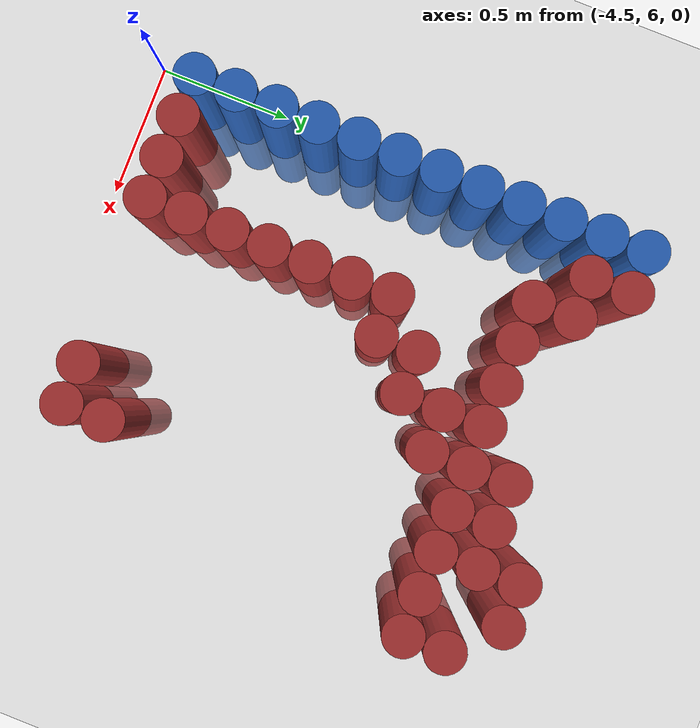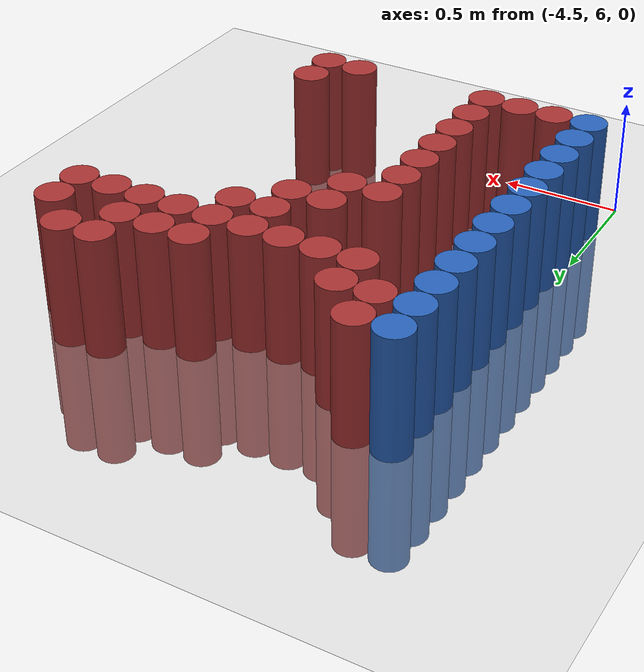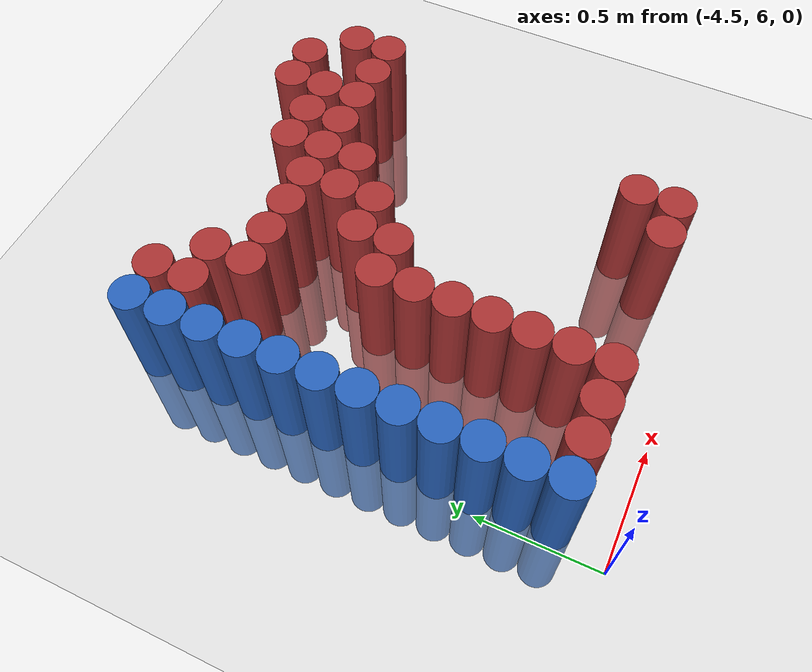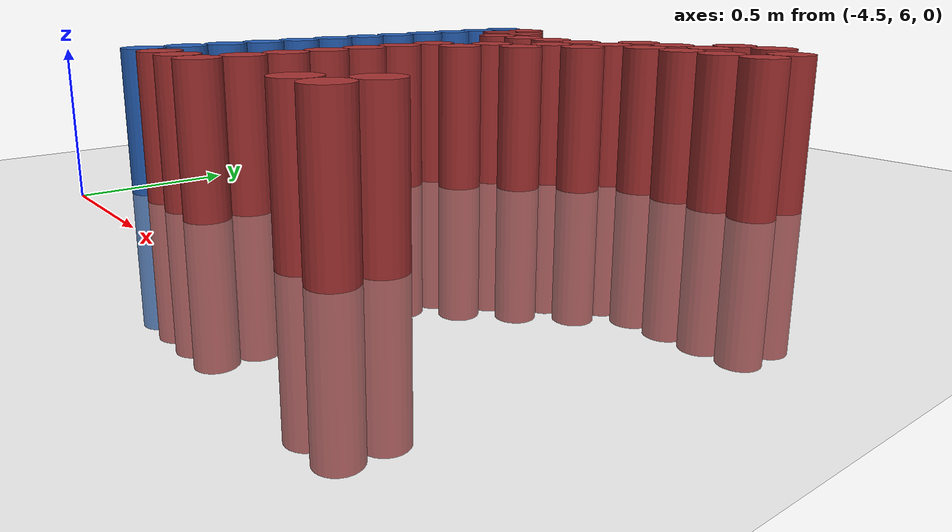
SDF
<sdf version="1.6">
 <world name="default">
  <model name="ground_plane">
   <static>1</static>
   <link name="link">
    <collision name="collision">
     <geometry><plane><normal>0 0 1</normal><size>100 100</size></plane></geometry>
     <surface><friction><ode><mu>100</mu><mu2>50</mu2></ode></friction></surface>
    </collision>
    <visual name="visual">
     <cast_shadows>0</cast_shadows>
     <geometry><plane><normal>0 0 1</normal><size>100 100</size></plane></geometry>
     <material>
      <script><uri>file://media/materials/scripts/gazebo.material</uri><name>Gazebo/Grey</name></script>
     </material>
    </visual>
   </link>
  </model>
  <model name="unit_cylinder_103">
   <static>1</static>
   <pose>-4.425000 6.225000 0.000000 0.000000 0.000000 0.000000</pose>
   <link name="link">
    <inertial>
     <mass>1</mass>
     <inertia><ixx>0.145833</ixx><ixy>0</ixy><ixz>0</ixz><iyy>0.145833</iyy><iyz>0</iyz><izz>0.125</izz></inertia>
    </inertial>
    <collision name="collision">
     <geometry><cylinder><radius>0.075000</radius><length>1</length></cylinder></geometry>
    </collision>
    <visual name="visual">
     <geometry><cylinder><radius>0.075000</radius><length>1</length></cylinder></geometry>
     <material>
      <ambient>0.152000 0.379000 0.720000 1</ambient>
      <diffuse>0.152000 0.379000 0.720000 1</diffuse>
     </material>
     <material>
      <script><name>Gazebo/Grey</name><uri>file://media/materials/scripts/gazebo.material</uri></script>
     </material>
    </visual>
   </link>
  </model>
  <model name="unit_cylinder_104">
   <static>1</static>
   <pose>-4.425000 6.375000 0.000000 0.000000 0.000000 0.000000</pose>
   <link name="link">
    <inertial>
     <mass>1</mass>
     <inertia><ixx>0.145833</ixx><ixy>0</ixy><ixz>0</ixz><iyy>0.145833</iyy><iyz>0</iyz><izz>0.125</izz></inertia>
    </inertial>
    <collision name="collision">
     <geometry><cylinder><radius>0.075000</radius><length>1</length></cylinder></geometry>
    </collision>
    <visual name="visual">
     <geometry><cylinder><radius>0.075000</radius><length>1</length></cylinder></geometry>
     <material>
      <ambient>0.152000 0.379000 0.720000 1</ambient>
      <diffuse>0.152000 0.379000 0.720000 1</diffuse>
     </material>
     <material>
      <script><name>Gazebo/Grey</name><uri>file://media/materials/scripts/gazebo.material</uri></script>
     </material>
    </visual>
   </link>
  </model>
  <model name="unit_cylinder_105">
   <static>1</static>
   <pose>-4.425000 6.525000 0.000000 0.000000 0.000000 0.000000</pose>
   <link name="link">
    <inertial>
     <mass>1</mass>
     <inertia><ixx>0.145833</ixx><ixy>0</ixy><ixz>0</ixz><iyy>0.145833</iyy><iyz>0</iyz><izz>0.125</izz></inertia>
    </inertial>
    <collision name="collision">
     <geometry><cylinder><radius>0.075000</radius><length>1</length></cylinder></geometry>
    </collision>
    <visual name="visual">
     <geometry><cylinder><radius>0.075000</radius><length>1</length></cylinder></geometry>
     <material>
      <ambient>0.152000 0.379000 0.720000 1</ambient>
      <diffuse>0.152000 0.379000 0.720000 1</diffuse>
     </material>
     <material>
      <script><name>Gazebo/Grey</name><uri>file://media/materials/scripts/gazebo.material</uri></script>
     </material>
    </visual>
   </link>
  </model>
  <model name="unit_cylinder_106">
   <static>1</static>
   <pose>-4.425000 6.675000 0.000000 0.000000 0.000000 0.000000</pose>
   <link name="link">
    <inertial>
     <mass>1</mass>
     <inertia><ixx>0.145833</ixx><ixy>0</ixy><ixz>0</ixz><iyy>0.145833</iyy><iyz>0</iyz><izz>0.125</izz></inertia>
    </inertial>
    <collision name="collision">
     <geometry><cylinder><radius>0.075000</radius><length>1</length></cylinder></geometry>
    </collision>
    <visual name="visual">
     <geometry><cylinder><radius>0.075000</radius><length>1</length></cylinder></geometry>
     <material>
      <ambient>0.152000 0.379000 0.720000 1</ambient>
      <diffuse>0.152000 0.379000 0.720000 1</diffuse>
     </material>
     <material>
      <script><name>Gazebo/Grey</name><uri>file://media/materials/scripts/gazebo.material</uri></script>
     </material>
    </visual>
   </link>
  </model>
  <model name="unit_cylinder_107">
   <static>1</static>
   <pose>-4.425000 6.825000 0.000000 0.000000 0.000000 0.000000</pose>
   <link name="link">
    <inertial>
     <mass>1</mass>
     <inertia><ixx>0.145833</ixx><ixy>0</ixy><ixz>0</ixz><iyy>0.145833</iyy><iyz>0</iyz><izz>0.125</izz></inertia>
    </inertial>
    <collision name="collision">
     <geometry><cylinder><radius>0.075000</radius><length>1</length></cylinder></geometry>
    </collision>
    <visual name="visual">
     <geometry><cylinder><radius>0.075000</radius><length>1</length></cylinder></geometry>
     <material>
      <ambient>0.152000 0.379000 0.720000 1</ambient>
      <diffuse>0.152000 0.379000 0.720000 1</diffuse>
     </material>
     <material>
      <script><name>Gazebo/Grey</name><uri>file://media/materials/scripts/gazebo.material</uri></script>
     </material>
    </visual>
   </link>
  </model>
  <model name="unit_cylinder_108">
   <static>1</static>
   <pose>-4.425000 6.975000 0.000000 0.000000 0.000000 0.000000</pose>
   <link name="link">
    <inertial>
     <mass>1</mass>
     <inertia><ixx>0.145833</ixx><ixy>0</ixy><ixz>0</ixz><iyy>0.145833</iyy><iyz>0</iyz><izz>0.125</izz></inertia>
    </inertial>
    <collision name="collision">
     <geometry><cylinder><radius>0.075000</radius><length>1</length></cylinder></geometry>
    </collision>
    <visual name="visual">
     <geometry><cylinder><radius>0.075000</radius><length>1</length></cylinder></geometry>
     <material>
      <ambient>0.152000 0.379000 0.720000 1</ambient>
      <diffuse>0.152000 0.379000 0.720000 1</diffuse>
     </material>
     <material>
      <script><name>Gazebo/Grey</name><uri>file://media/materials/scripts/gazebo.material</uri></script>
     </material>
    </visual>
   </link>
  </model>
  <model name="unit_cylinder_109">
   <static>1</static>
   <pose>-4.425000 7.125000 0.000000 0.000000 0.000000 0.000000</pose>
   <link name="link">
    <inertial>
     <mass>1</mass>
     <inertia><ixx>0.145833</ixx><ixy>0</ixy><ixz>0</ixz><iyy>0.145833</iyy><iyz>0</iyz><izz>0.125</izz></inertia>
    </inertial>
    <collision name="collision">
     <geometry><cylinder><radius>0.075000</radius><length>1</length></cylinder></geometry>
    </collision>
    <visual name="visual">
     <geometry><cylinder><radius>0.075000</radius><length>1</length></cylinder></geometry>
     <material>
      <ambient>0.152000 0.379000 0.720000 1</ambient>
      <diffuse>0.152000 0.379000 0.720000 1</diffuse>
     </material>
     <material>
      <script><name>Gazebo/Grey</name><uri>file://media/materials/scripts/gazebo.material</uri></script>
     </material>
    </visual>
   </link>
  </model>
  <model name="unit_cylinder_110">
   <static>1</static>
   <pose>-4.425000 7.275000 0.000000 0.000000 0.000000 0.000000</pose>
   <link name="link">
    <inertial>
     <mass>1</mass>
     <inertia><ixx>0.145833</ixx><ixy>0</ixy><ixz>0</ixz><iyy>0.145833</iyy><iyz>0</iyz><izz>0.125</izz></inertia>
    </inertial>
    <collision name="collision">
     <geometry><cylinder><radius>0.075000</radius><length>1</length></cylinder></geometry>
    </collision>
    <visual name="visual">
     <geometry><cylinder><radius>0.075000</radius><length>1</length></cylinder></geometry>
     <material>
      <ambient>0.152000 0.379000 0.720000 1</ambient>
      <diffuse>0.152000 0.379000 0.720000 1</diffuse>
     </material>
     <material>
      <script><name>Gazebo/Grey</name><uri>file://media/materials/scripts/gazebo.material</uri></script>
     </material>
    </visual>
   </link>
  </model>
  <model name="unit_cylinder_111">
   <static>1</static>
   <pose>-4.425000 7.425000 0.000000 0.000000 0.000000 0.000000</pose>
   <link name="link">
    <inertial>
     <mass>1</mass>
     <inertia><ixx>0.145833</ixx><ixy>0</ixy><ixz>0</ixz><iyy>0.145833</iyy><iyz>0</iyz><izz>0.125</izz></inertia>
    </inertial>
    <collision name="collision">
     <geometry><cylinder><radius>0.075000</radius><length>1</length></cylinder></geometry>
    </collision>
    <visual name="visual">
     <geometry><cylinder><radius>0.075000</radius><length>1</length></cylinder></geometry>
     <material>
      <ambient>0.152000 0.379000 0.720000 1</ambient>
      <diffuse>0.152000 0.379000 0.720000 1</diffuse>
     </material>
     <material>
      <script><name>Gazebo/Grey</name><uri>file://media/materials/scripts/gazebo.material</uri></script>
     </material>
    </visual>
   </link>
  </model>
  <model name="unit_cylinder_112">
   <static>1</static>
   <pose>-4.425000 7.575000 0.000000 0.000000 0.000000 0.000000</pose>
   <link name="link">
    <inertial>
     <mass>1</mass>
     <inertia><ixx>0.145833</ixx><ixy>0</ixy><ixz>0</ixz><iyy>0.145833</iyy><iyz>0</iyz><izz>0.125</izz></inertia>
    </inertial>
    <collision name="collision">
     <geometry><cylinder><radius>0.075000</radius><length>1</length></cylinder></geometry>
    </collision>
    <visual name="visual">
     <geometry><cylinder><radius>0.075000</radius><length>1</length></cylinder></geometry>
     <material>
      <ambient>0.152000 0.379000 0.720000 1</ambient>
      <diffuse>0.152000 0.379000 0.720000 1</diffuse>
     </material>
     <material>
      <script><name>Gazebo/Grey</name><uri>file://media/materials/scripts/gazebo.material</uri></script>
     </material>
    </visual>
   </link>
  </model>
  <model name="unit_cylinder_113">
   <static>1</static>
   <pose>-4.425000 7.725000 0.000000 0.000000 0.000000 0.000000</pose>
   <link name="link">
    <inertial>
     <mass>1</mass>
     <inertia><ixx>0.145833</ixx><ixy>0</ixy><ixz>0</ixz><iyy>0.145833</iyy><iyz>0</iyz><izz>0.125</izz></inertia>
    </inertial>
    <collision name="collision">
     <geometry><cylinder><radius>0.075000</radius><length>1</length></cylinder></geometry>
    </collision>
    <visual name="visual">
     <geometry><cylinder><radius>0.075000</radius><length>1</length></cylinder></geometry>
     <material>
      <ambient>0.152000 0.379000 0.720000 1</ambient>
      <diffuse>0.152000 0.379000 0.720000 1</diffuse>
     </material>
     <material>
      <script><name>Gazebo/Grey</name><uri>file://media/materials/scripts/gazebo.material</uri></script>
     </material>
    </visual>
   </link>
  </model>
  <model name="unit_cylinder_114">
   <static>1</static>
   <pose>-4.425000 7.875000 0.000000 0.000000 0.000000 0.000000</pose>
   <link name="link">
    <inertial>
     <mass>1</mass>
     <inertia><ixx>0.145833</ixx><ixy>0</ixy><ixz>0</ixz><iyy>0.145833</iyy><iyz>0</iyz><izz>0.125</izz></inertia>
    </inertial>
    <collision name="collision">
     <geometry><cylinder><radius>0.075000</radius><length>1</length></cylinder></geometry>
    </collision>
    <visual name="visual">
     <geometry><cylinder><radius>0.075000</radius><length>1</length></cylinder></geometry>
     <material>
      <ambient>0.152000 0.379000 0.720000 1</ambient>
      <diffuse>0.152000 0.379000 0.720000 1</diffuse>
     </material>
     <material>
      <script><name>Gazebo/Grey</name><uri>file://media/materials/scripts/gazebo.material</uri></script>
     </material>
    </visual>
   </link>
  </model>
  <model name="unit_cylinder_132">
   <static>1</static>
   <pose>-4.275000 6.225000 0.000000 0.000000 0.000000 0.000000</pose>
   <link name="link">
    <inertial>
     <mass>1</mass>
     <inertia><ixx>0.145833</ixx><ixy>0</ixy><ixz>0</ixz><iyy>0.145833</iyy><iyz>0</iyz><izz>0.125</izz></inertia>
    </inertial>
    <collision name="collision">
     <geometry><cylinder><radius>0.075000</radius><length>1</length></cylinder></geometry>
    </collision>
    <visual name="visual">
     <geometry><cylinder><radius>0.075000</radius><length>1</length></cylinder></geometry>
     <material>
      <ambient>0.648000 0.192000 0.192000 1</ambient>
      <diffuse>0.648000 0.192000 0.192000 1</diffuse>
     </material>
     <material>
      <script><name>Gazebo/Grey</name><uri>file://media/materials/scripts/gazebo.material</uri></script>
     </material>
    </visual>
   </link>
  </model>
  <model name="unit_cylinder_133">
   <static>1</static>
   <pose>-4.275000 7.725000 0.000000 0.000000 0.000000 0.000000</pose>
   <link name="link">
    <inertial>
     <mass>1</mass>
     <inertia><ixx>0.145833</ixx><ixy>0</ixy><ixz>0</ixz><iyy>0.145833</iyy><iyz>0</iyz><izz>0.125</izz></inertia>
    </inertial>
    <collision name="collision">
     <geometry><cylinder><radius>0.075000</radius><length>1</length></cylinder></geometry>
    </collision>
    <visual name="visual">
     <geometry><cylinder><radius>0.075000</radius><length>1</length></cylinder></geometry>
     <material>
      <ambient>0.648000 0.192000 0.192000 1</ambient>
      <diffuse>0.648000 0.192000 0.192000 1</diffuse>
     </material>
     <material>
      <script><name>Gazebo/Grey</name><uri>file://media/materials/scripts/gazebo.material</uri></script>
     </material>
    </visual>
   </link>
  </model>
  <model name="unit_cylinder_134">
   <static>1</static>
   <pose>-4.275000 7.875000 0.000000 0.000000 0.000000 0.000000</pose>
   <link name="link">
    <inertial>
     <mass>1</mass>
     <inertia><ixx>0.145833</ixx><ixy>0</ixy><ixz>0</ixz><iyy>0.145833</iyy><iyz>0</iyz><izz>0.125</izz></inertia>
    </inertial>
    <collision name="collision">
     <geometry><cylinder><radius>0.075000</radius><length>1</length></cylinder></geometry>
    </collision>
    <visual name="visual">
     <geometry><cylinder><radius>0.075000</radius><length>1</length></cylinder></geometry>
     <material>
      <ambient>0.648000 0.192000 0.192000 1</ambient>
      <diffuse>0.648000 0.192000 0.192000 1</diffuse>
     </material>
     <material>
      <script><name>Gazebo/Grey</name><uri>file://media/materials/scripts/gazebo.material</uri></script>
     </material>
    </visual>
   </link>
  </model>
  <model name="unit_cylinder_143">
   <static>1</static>
   <pose>-4.125000 6.225000 0.000000 0.000000 0.000000 0.000000</pose>
   <link name="link">
    <inertial>
     <mass>1</mass>
     <inertia><ixx>0.145833</ixx><ixy>0</ixy><ixz>0</ixz><iyy>0.145833</iyy><iyz>0</iyz><izz>0.125</izz></inertia>
    </inertial>
    <collision name="collision">
     <geometry><cylinder><radius>0.075000</radius><length>1</length></cylinder></geometry>
    </collision>
    <visual name="visual">
     <geometry><cylinder><radius>0.075000</radius><length>1</length></cylinder></geometry>
     <material>
      <ambient>0.648000 0.192000 0.192000 1</ambient>
      <diffuse>0.648000 0.192000 0.192000 1</diffuse>
     </material>
     <material>
      <script><name>Gazebo/Grey</name><uri>file://media/materials/scripts/gazebo.material</uri></script>
     </material>
    </visual>
   </link>
  </model>
  <model name="unit_cylinder_144">
   <static>1</static>
   <pose>-4.125000 7.575000 0.000000 0.000000 0.000000 0.000000</pose>
   <link name="link">
    <inertial>
     <mass>1</mass>
     <inertia><ixx>0.145833</ixx><ixy>0</ixy><ixz>0</ixz><iyy>0.145833</iyy><iyz>0</iyz><izz>0.125</izz></inertia>
    </inertial>
    <collision name="collision">
     <geometry><cylinder><radius>0.075000</radius><length>1</length></cylinder></geometry>
    </collision>
    <visual name="visual">
     <geometry><cylinder><radius>0.075000</radius><length>1</length></cylinder></geometry>
     <material>
      <ambient>0.648000 0.192000 0.192000 1</ambient>
      <diffuse>0.648000 0.192000 0.192000 1</diffuse>
     </material>
     <material>
      <script><name>Gazebo/Grey</name><uri>file://media/materials/scripts/gazebo.material</uri></script>
     </material>
    </visual>
   </link>
  </model>
  <model name="unit_cylinder_145">
   <static>1</static>
   <pose>-4.125000 7.725000 0.000000 0.000000 0.000000 0.000000</pose>
   <link name="link">
    <inertial>
     <mass>1</mass>
     <inertia><ixx>0.145833</ixx><ixy>0</ixy><ixz>0</ixz><iyy>0.145833</iyy><iyz>0</iyz><izz>0.125</izz></inertia>
    </inertial>
    <collision name="collision">
     <geometry><cylinder><radius>0.075000</radius><length>1</length></cylinder></geometry>
    </collision>
    <visual name="visual">
     <geometry><cylinder><radius>0.075000</radius><length>1</length></cylinder></geometry>
     <material>
      <ambient>0.648000 0.192000 0.192000 1</ambient>
      <diffuse>0.648000 0.192000 0.192000 1</diffuse>
     </material>
     <material>
      <script><name>Gazebo/Grey</name><uri>file://media/materials/scripts/gazebo.material</uri></script>
     </material>
    </visual>
   </link>
  </model>
  <model name="unit_cylinder_149">
   <static>1</static>
   <pose>-3.975000 6.225000 0.000000 0.000000 0.000000 0.000000</pose>
   <link name="link">
    <inertial>
     <mass>1</mass>
     <inertia><ixx>0.145833</ixx><ixy>0</ixy><ixz>0</ixz><iyy>0.145833</iyy><iyz>0</iyz><izz>0.125</izz></inertia>
    </inertial>
    <collision name="collision">
     <geometry><cylinder><radius>0.075000</radius><length>1</length></cylinder></geometry>
    </collision>
    <visual name="visual">
     <geometry><cylinder><radius>0.075000</radius><length>1</length></cylinder></geometry>
     <material>
      <ambient>0.648000 0.192000 0.192000 1</ambient>
      <diffuse>0.648000 0.192000 0.192000 1</diffuse>
     </material>
     <material>
      <script><name>Gazebo/Grey</name><uri>file://media/materials/scripts/gazebo.material</uri></script>
     </material>
    </visual>
   </link>
  </model>
  <model name="unit_cylinder_150">
   <static>1</static>
   <pose>-3.975000 6.375000 0.000000 0.000000 0.000000 0.000000</pose>
   <link name="link">
    <inertial>
     <mass>1</mass>
     <inertia><ixx>0.145833</ixx><ixy>0</ixy><ixz>0</ixz><iyy>0.145833</iyy><iyz>0</iyz><izz>0.125</izz></inertia>
    </inertial>
    <collision name="collision">
     <geometry><cylinder><radius>0.075000</radius><length>1</length></cylinder></geometry>
    </collision>
    <visual name="visual">
     <geometry><cylinder><radius>0.075000</radius><length>1</length></cylinder></geometry>
     <material>
      <ambient>0.648000 0.192000 0.192000 1</ambient>
      <diffuse>0.648000 0.192000 0.192000 1</diffuse>
     </material>
     <material>
      <script><name>Gazebo/Grey</name><uri>file://media/materials/scripts/gazebo.material</uri></script>
     </material>
    </visual>
   </link>
  </model>
  <model name="unit_cylinder_151">
   <static>1</static>
   <pose>-3.975000 6.525000 0.000000 0.000000 0.000000 0.000000</pose>
   <link name="link">
    <inertial>
     <mass>1</mass>
     <inertia><ixx>0.145833</ixx><ixy>0</ixy><ixz>0</ixz><iyy>0.145833</iyy><iyz>0</iyz><izz>0.125</izz></inertia>
    </inertial>
    <collision name="collision">
     <geometry><cylinder><radius>0.075000</radius><length>1</length></cylinder></geometry>
    </collision>
    <visual name="visual">
     <geometry><cylinder><radius>0.075000</radius><length>1</length></cylinder></geometry>
     <material>
      <ambient>0.648000 0.192000 0.192000 1</ambient>
      <diffuse>0.648000 0.192000 0.192000 1</diffuse>
     </material>
     <material>
      <script><name>Gazebo/Grey</name><uri>file://media/materials/scripts/gazebo.material</uri></script>
     </material>
    </visual>
   </link>
  </model>
  <model name="unit_cylinder_152">
   <static>1</static>
   <pose>-3.975000 6.675000 0.000000 0.000000 0.000000 0.000000</pose>
   <link name="link">
    <inertial>
     <mass>1</mass>
     <inertia><ixx>0.145833</ixx><ixy>0</ixy><ixz>0</ixz><iyy>0.145833</iyy><iyz>0</iyz><izz>0.125</izz></inertia>
    </inertial>
    <collision name="collision">
     <geometry><cylinder><radius>0.075000</radius><length>1</length></cylinder></geometry>
    </collision>
    <visual name="visual">
     <geometry><cylinder><radius>0.075000</radius><length>1</length></cylinder></geometry>
     <material>
      <ambient>0.648000 0.192000 0.192000 1</ambient>
      <diffuse>0.648000 0.192000 0.192000 1</diffuse>
     </material>
     <material>
      <script><name>Gazebo/Grey</name><uri>file://media/materials/scripts/gazebo.material</uri></script>
     </material>
    </visual>
   </link>
  </model>
  <model name="unit_cylinder_153">
   <static>1</static>
   <pose>-3.975000 6.825000 0.000000 0.000000 0.000000 0.000000</pose>
   <link name="link">
    <inertial>
     <mass>1</mass>
     <inertia><ixx>0.145833</ixx><ixy>0</ixy><ixz>0</ixz><iyy>0.145833</iyy><iyz>0</iyz><izz>0.125</izz></inertia>
    </inertial>
    <collision name="collision">
     <geometry><cylinder><radius>0.075000</radius><length>1</length></cylinder></geometry>
    </collision>
    <visual name="visual">
     <geometry><cylinder><radius>0.075000</radius><length>1</length></cylinder></geometry>
     <material>
      <ambient>0.648000 0.192000 0.192000 1</ambient>
      <diffuse>0.648000 0.192000 0.192000 1</diffuse>
     </material>
     <material>
      <script><name>Gazebo/Grey</name><uri>file://media/materials/scripts/gazebo.material</uri></script>
     </material>
    </visual>
   </link>
  </model>
  <model name="unit_cylinder_154">
   <static>1</static>
   <pose>-3.975000 6.975000 0.000000 0.000000 0.000000 0.000000</pose>
   <link name="link">
    <inertial>
     <mass>1</mass>
     <inertia><ixx>0.145833</ixx><ixy>0</ixy><ixz>0</ixz><iyy>0.145833</iyy><iyz>0</iyz><izz>0.125</izz></inertia>
    </inertial>
    <collision name="collision">
     <geometry><cylinder><radius>0.075000</radius><length>1</length></cylinder></geometry>
    </collision>
    <visual name="visual">
     <geometry><cylinder><radius>0.075000</radius><length>1</length></cylinder></geometry>
     <material>
      <ambient>0.648000 0.192000 0.192000 1</ambient>
      <diffuse>0.648000 0.192000 0.192000 1</diffuse>
     </material>
     <material>
      <script><name>Gazebo/Grey</name><uri>file://media/materials/scripts/gazebo.material</uri></script>
     </material>
    </visual>
   </link>
  </model>
  <model name="unit_cylinder_155">
   <static>1</static>
   <pose>-3.975000 7.125000 0.000000 0.000000 0.000000 0.000000</pose>
   <link name="link">
    <inertial>
     <mass>1</mass>
     <inertia><ixx>0.145833</ixx><ixy>0</ixy><ixz>0</ixz><iyy>0.145833</iyy><iyz>0</iyz><izz>0.125</izz></inertia>
    </inertial>
    <collision name="collision">
     <geometry><cylinder><radius>0.075000</radius><length>1</length></cylinder></geometry>
    </collision>
    <visual name="visual">
     <geometry><cylinder><radius>0.075000</radius><length>1</length></cylinder></geometry>
     <material>
      <ambient>0.648000 0.192000 0.192000 1</ambient>
      <diffuse>0.648000 0.192000 0.192000 1</diffuse>
     </material>
     <material>
      <script><name>Gazebo/Grey</name><uri>file://media/materials/scripts/gazebo.material</uri></script>
     </material>
    </visual>
   </link>
  </model>
  <model name="unit_cylinder_156">
   <static>1</static>
   <pose>-3.975000 7.575000 0.000000 0.000000 0.000000 0.000000</pose>
   <link name="link">
    <inertial>
     <mass>1</mass>
     <inertia><ixx>0.145833</ixx><ixy>0</ixy><ixz>0</ixz><iyy>0.145833</iyy><iyz>0</iyz><izz>0.125</izz></inertia>
    </inertial>
    <collision name="collision">
     <geometry><cylinder><radius>0.075000</radius><length>1</length></cylinder></geometry>
    </collision>
    <visual name="visual">
     <geometry><cylinder><radius>0.075000</radius><length>1</length></cylinder></geometry>
     <material>
      <ambient>0.648000 0.192000 0.192000 1</ambient>
      <diffuse>0.648000 0.192000 0.192000 1</diffuse>
     </material>
     <material>
      <script><name>Gazebo/Grey</name><uri>file://media/materials/scripts/gazebo.material</uri></script>
     </material>
    </visual>
   </link>
  </model>
  <model name="unit_cylinder_160">
   <static>1</static>
   <pose>-3.825000 7.125000 0.000000 0.000000 0.000000 0.000000</pose>
   <link name="link">
    <inertial>
     <mass>1</mass>
     <inertia><ixx>0.145833</ixx><ixy>0</ixy><ixz>0</ixz><iyy>0.145833</iyy><iyz>0</iyz><izz>0.125</izz></inertia>
    </inertial>
    <collision name="collision">
     <geometry><cylinder><radius>0.075000</radius><length>1</length></cylinder></geometry>
    </collision>
    <visual name="visual">
     <geometry><cylinder><radius>0.075000</radius><length>1</length></cylinder></geometry>
     <material>
      <ambient>0.648000 0.192000 0.192000 1</ambient>
      <diffuse>0.648000 0.192000 0.192000 1</diffuse>
     </material>
     <material>
      <script><name>Gazebo/Grey</name><uri>file://media/materials/scripts/gazebo.material</uri></script>
     </material>
    </visual>
   </link>
  </model>
  <model name="unit_cylinder_161">
   <static>1</static>
   <pose>-3.825000 7.275000 0.000000 0.000000 0.000000 0.000000</pose>
   <link name="link">
    <inertial>
     <mass>1</mass>
     <inertia><ixx>0.145833</ixx><ixy>0</ixy><ixz>0</ixz><iyy>0.145833</iyy><iyz>0</iyz><izz>0.125</izz></inertia>
    </inertial>
    <collision name="collision">
     <geometry><cylinder><radius>0.075000</radius><length>1</length></cylinder></geometry>
    </collision>
    <visual name="visual">
     <geometry><cylinder><radius>0.075000</radius><length>1</length></cylinder></geometry>
     <material>
      <ambient>0.648000 0.192000 0.192000 1</ambient>
      <diffuse>0.648000 0.192000 0.192000 1</diffuse>
     </material>
     <material>
      <script><name>Gazebo/Grey</name><uri>file://media/materials/scripts/gazebo.material</uri></script>
     </material>
    </visual>
   </link>
  </model>
  <model name="unit_cylinder_162">
   <static>1</static>
   <pose>-3.825000 7.575000 0.000000 0.000000 0.000000 0.000000</pose>
   <link name="link">
    <inertial>
     <mass>1</mass>
     <inertia><ixx>0.145833</ixx><ixy>0</ixy><ixz>0</ixz><iyy>0.145833</iyy><iyz>0</iyz><izz>0.125</izz></inertia>
    </inertial>
    <collision name="collision">
     <geometry><cylinder><radius>0.075000</radius><length>1</length></cylinder></geometry>
    </collision>
    <visual name="visual">
     <geometry><cylinder><radius>0.075000</radius><length>1</length></cylinder></geometry>
     <material>
      <ambient>0.648000 0.192000 0.192000 1</ambient>
      <diffuse>0.648000 0.192000 0.192000 1</diffuse>
     </material>
     <material>
      <script><name>Gazebo/Grey</name><uri>file://media/materials/scripts/gazebo.material</uri></script>
     </material>
    </visual>
   </link>
  </model>
  <model name="unit_cylinder_165">
   <static>1</static>
   <pose>-3.675000 7.275000 0.000000 0.000000 0.000000 0.000000</pose>
   <link name="link">
    <inertial>
     <mass>1</mass>
     <inertia><ixx>0.145833</ixx><ixy>0</ixy><ixz>0</ixz><iyy>0.145833</iyy><iyz>0</iyz><izz>0.125</izz></inertia>
    </inertial>
    <collision name="collision">
     <geometry><cylinder><radius>0.075000</radius><length>1</length></cylinder></geometry>
    </collision>
    <visual name="visual">
     <geometry><cylinder><radius>0.075000</radius><length>1</length></cylinder></geometry>
     <material>
      <ambient>0.648000 0.192000 0.192000 1</ambient>
      <diffuse>0.648000 0.192000 0.192000 1</diffuse>
     </material>
     <material>
      <script><name>Gazebo/Grey</name><uri>file://media/materials/scripts/gazebo.material</uri></script>
     </material>
    </visual>
   </link>
  </model>
  <model name="unit_cylinder_166">
   <static>1</static>
   <pose>-3.675000 7.425000 0.000000 0.000000 0.000000 0.000000</pose>
   <link name="link">
    <inertial>
     <mass>1</mass>
     <inertia><ixx>0.145833</ixx><ixy>0</ixy><ixz>0</ixz><iyy>0.145833</iyy><iyz>0</iyz><izz>0.125</izz></inertia>
    </inertial>
    <collision name="collision">
     <geometry><cylinder><radius>0.075000</radius><length>1</length></cylinder></geometry>
    </collision>
    <visual name="visual">
     <geometry><cylinder><radius>0.075000</radius><length>1</length></cylinder></geometry>
     <material>
      <ambient>0.648000 0.192000 0.192000 1</ambient>
      <diffuse>0.648000 0.192000 0.192000 1</diffuse>
     </material>
     <material>
      <script><name>Gazebo/Grey</name><uri>file://media/materials/scripts/gazebo.material</uri></script>
     </material>
    </visual>
   </link>
  </model>
  <model name="unit_cylinder_167">
   <static>1</static>
   <pose>-3.675000 7.575000 0.000000 0.000000 0.000000 0.000000</pose>
   <link name="link">
    <inertial>
     <mass>1</mass>
     <inertia><ixx>0.145833</ixx><ixy>0</ixy><ixz>0</ixz><iyy>0.145833</iyy><iyz>0</iyz><izz>0.125</izz></inertia>
    </inertial>
    <collision name="collision">
     <geometry><cylinder><radius>0.075000</radius><length>1</length></cylinder></geometry>
    </collision>
    <visual name="visual">
     <geometry><cylinder><radius>0.075000</radius><length>1</length></cylinder></geometry>
     <material>
      <ambient>0.648000 0.192000 0.192000 1</ambient>
      <diffuse>0.648000 0.192000 0.192000 1</diffuse>
     </material>
     <material>
      <script><name>Gazebo/Grey</name><uri>file://media/materials/scripts/gazebo.material</uri></script>
     </material>
    </visual>
   </link>
  </model>
  <model name="unit_cylinder_171">
   <static>1</static>
   <pose>-3.525000 7.425000 0.000000 0.000000 0.000000 0.000000</pose>
   <link name="link">
    <inertial>
     <mass>1</mass>
     <inertia><ixx>0.145833</ixx><ixy>0</ixy><ixz>0</ixz><iyy>0.145833</iyy><iyz>0</iyz><izz>0.125</izz></inertia>
    </inertial>
    <collision name="collision">
     <geometry><cylinder><radius>0.075000</radius><length>1</length></cylinder></geometry>
    </collision>
    <visual name="visual">
     <geometry><cylinder><radius>0.075000</radius><length>1</length></cylinder></geometry>
     <material>
      <ambient>0.648000 0.192000 0.192000 1</ambient>
      <diffuse>0.648000 0.192000 0.192000 1</diffuse>
     </material>
     <material>
      <script><name>Gazebo/Grey</name><uri>file://media/materials/scripts/gazebo.material</uri></script>
     </material>
    </visual>
   </link>
  </model>
  <model name="unit_cylinder_172">
   <static>1</static>
   <pose>-3.525000 7.575000 0.000000 0.000000 0.000000 0.000000</pose>
   <link name="link">
    <inertial>
     <mass>1</mass>
     <inertia><ixx>0.145833</ixx><ixy>0</ixy><ixz>0</ixz><iyy>0.145833</iyy><iyz>0</iyz><izz>0.125</izz></inertia>
    </inertial>
    <collision name="collision">
     <geometry><cylinder><radius>0.075000</radius><length>1</length></cylinder></geometry>
    </collision>
    <visual name="visual">
     <geometry><cylinder><radius>0.075000</radius><length>1</length></cylinder></geometry>
     <material>
      <ambient>0.648000 0.192000 0.192000 1</ambient>
      <diffuse>0.648000 0.192000 0.192000 1</diffuse>
     </material>
     <material>
      <script><name>Gazebo/Grey</name><uri>file://media/materials/scripts/gazebo.material</uri></script>
     </material>
    </visual>
   </link>
  </model>
  <model name="unit_cylinder_173">
   <static>1</static>
   <pose>-3.525000 7.725000 0.000000 0.000000 0.000000 0.000000</pose>
   <link name="link">
    <inertial>
     <mass>1</mass>
     <inertia><ixx>0.145833</ixx><ixy>0</ixy><ixz>0</ixz><iyy>0.145833</iyy><iyz>0</iyz><izz>0.125</izz></inertia>
    </inertial>
    <collision name="collision">
     <geometry><cylinder><radius>0.075000</radius><length>1</length></cylinder></geometry>
    </collision>
    <visual name="visual">
     <geometry><cylinder><radius>0.075000</radius><length>1</length></cylinder></geometry>
     <material>
      <ambient>0.648000 0.192000 0.192000 1</ambient>
      <diffuse>0.648000 0.192000 0.192000 1</diffuse>
     </material>
     <material>
      <script><name>Gazebo/Grey</name><uri>file://media/materials/scripts/gazebo.material</uri></script>
     </material>
    </visual>
   </link>
  </model>
  <model name="unit_cylinder_179">
   <static>1</static>
   <pose>-3.375000 6.225000 0.000000 0.000000 0.000000 0.000000</pose>
   <link name="link">
    <inertial>
     <mass>1</mass>
     <inertia><ixx>0.145833</ixx><ixy>0</ixy><ixz>0</ixz><iyy>0.145833</iyy><iyz>0</iyz><izz>0.125</izz></inertia>
    </inertial>
    <collision name="collision">
     <geometry><cylinder><radius>0.075000</radius><length>1</length></cylinder></geometry>
    </collision>
    <visual name="visual">
     <geometry><cylinder><radius>0.075000</radius><length>1</length></cylinder></geometry>
     <material>
      <ambient>0.648000 0.192000 0.192000 1</ambient>
      <diffuse>0.648000 0.192000 0.192000 1</diffuse>
     </material>
     <material>
      <script><name>Gazebo/Grey</name><uri>file://media/materials/scripts/gazebo.material</uri></script>
     </material>
    </visual>
   </link>
  </model>
  <model name="unit_cylinder_180">
   <static>1</static>
   <pose>-3.375000 7.575000 0.000000 0.000000 0.000000 0.000000</pose>
   <link name="link">
    <inertial>
     <mass>1</mass>
     <inertia><ixx>0.145833</ixx><ixy>0</ixy><ixz>0</ixz><iyy>0.145833</iyy><iyz>0</iyz><izz>0.125</izz></inertia>
    </inertial>
    <collision name="collision">
     <geometry><cylinder><radius>0.075000</radius><length>1</length></cylinder></geometry>
    </collision>
    <visual name="visual">
     <geometry><cylinder><radius>0.075000</radius><length>1</length></cylinder></geometry>
     <material>
      <ambient>0.648000 0.192000 0.192000 1</ambient>
      <diffuse>0.648000 0.192000 0.192000 1</diffuse>
     </material>
     <material>
      <script><name>Gazebo/Grey</name><uri>file://media/materials/scripts/gazebo.material</uri></script>
     </material>
    </visual>
   </link>
  </model>
  <model name="unit_cylinder_181">
   <static>1</static>
   <pose>-3.375000 7.725000 0.000000 0.000000 0.000000 0.000000</pose>
   <link name="link">
    <inertial>
     <mass>1</mass>
     <inertia><ixx>0.145833</ixx><ixy>0</ixy><ixz>0</ixz><iyy>0.145833</iyy><iyz>0</iyz><izz>0.125</izz></inertia>
    </inertial>
    <collision name="collision">
     <geometry><cylinder><radius>0.075000</radius><length>1</length></cylinder></geometry>
    </collision>
    <visual name="visual">
     <geometry><cylinder><radius>0.075000</radius><length>1</length></cylinder></geometry>
     <material>
      <ambient>0.648000 0.192000 0.192000 1</ambient>
      <diffuse>0.648000 0.192000 0.192000 1</diffuse>
     </material>
     <material>
      <script><name>Gazebo/Grey</name><uri>file://media/materials/scripts/gazebo.material</uri></script>
     </material>
    </visual>
   </link>
  </model>
  <model name="unit_cylinder_185">
   <static>1</static>
   <pose>-3.225000 6.225000 0.000000 0.000000 0.000000 0.000000</pose>
   <link name="link">
    <inertial>
     <mass>1</mass>
     <inertia><ixx>0.145833</ixx><ixy>0</ixy><ixz>0</ixz><iyy>0.145833</iyy><iyz>0</iyz><izz>0.125</izz></inertia>
    </inertial>
    <collision name="collision">
     <geometry><cylinder><radius>0.075000</radius><length>1</length></cylinder></geometry>
    </collision>
    <visual name="visual">
     <geometry><cylinder><radius>0.075000</radius><length>1</length></cylinder></geometry>
     <material>
      <ambient>0.648000 0.192000 0.192000 1</ambient>
      <diffuse>0.648000 0.192000 0.192000 1</diffuse>
     </material>
     <material>
      <script><name>Gazebo/Grey</name><uri>file://media/materials/scripts/gazebo.material</uri></script>
     </material>
    </visual>
   </link>
  </model>
  <model name="unit_cylinder_186">
   <static>1</static>
   <pose>-3.225000 6.375000 0.000000 0.000000 0.000000 0.000000</pose>
   <link name="link">
    <inertial>
     <mass>1</mass>
     <inertia><ixx>0.145833</ixx><ixy>0</ixy><ixz>0</ixz><iyy>0.145833</iyy><iyz>0</iyz><izz>0.125</izz></inertia>
    </inertial>
    <collision name="collision">
     <geometry><cylinder><radius>0.075000</radius><length>1</length></cylinder></geometry>
    </collision>
    <visual name="visual">
     <geometry><cylinder><radius>0.075000</radius><length>1</length></cylinder></geometry>
     <material>
      <ambient>0.648000 0.192000 0.192000 1</ambient>
      <diffuse>0.648000 0.192000 0.192000 1</diffuse>
     </material>
     <material>
      <script><name>Gazebo/Grey</name><uri>file://media/materials/scripts/gazebo.material</uri></script>
     </material>
    </visual>
   </link>
  </model>
  <model name="unit_cylinder_187">
   <static>1</static>
   <pose>-3.225000 7.575000 0.000000 0.000000 0.000000 0.000000</pose>
   <link name="link">
    <inertial>
     <mass>1</mass>
     <inertia><ixx>0.145833</ixx><ixy>0</ixy><ixz>0</ixz><iyy>0.145833</iyy><iyz>0</iyz><izz>0.125</izz></inertia>
    </inertial>
    <collision name="collision">
     <geometry><cylinder><radius>0.075000</radius><length>1</length></cylinder></geometry>
    </collision>
    <visual name="visual">
     <geometry><cylinder><radius>0.075000</radius><length>1</length></cylinder></geometry>
     <material>
      <ambient>0.648000 0.192000 0.192000 1</ambient>
      <diffuse>0.648000 0.192000 0.192000 1</diffuse>
     </material>
     <material>
      <script><name>Gazebo/Grey</name><uri>file://media/materials/scripts/gazebo.material</uri></script>
     </material>
    </visual>
   </link>
  </model>
  <model name="unit_cylinder_188">
   <static>1</static>
   <pose>-3.225000 7.725000 0.000000 0.000000 0.000000 0.000000</pose>
   <link name="link">
    <inertial>
     <mass>1</mass>
     <inertia><ixx>0.145833</ixx><ixy>0</ixy><ixz>0</ixz><iyy>0.145833</iyy><iyz>0</iyz><izz>0.125</izz></inertia>
    </inertial>
    <collision name="collision">
     <geometry><cylinder><radius>0.075000</radius><length>1</length></cylinder></geometry>
    </collision>
    <visual name="visual">
     <geometry><cylinder><radius>0.075000</radius><length>1</length></cylinder></geometry>
     <material>
      <ambient>0.648000 0.192000 0.192000 1</ambient>
      <diffuse>0.648000 0.192000 0.192000 1</diffuse>
     </material>
     <material>
      <script><name>Gazebo/Grey</name><uri>file://media/materials/scripts/gazebo.material</uri></script>
     </material>
    </visual>
   </link>
  </model>
  <model name="unit_cylinder_189">
   <static>1</static>
   <pose>-3.225000 7.875000 0.000000 0.000000 0.000000 0.000000</pose>
   <link name="link">
    <inertial>
     <mass>1</mass>
     <inertia><ixx>0.145833</ixx><ixy>0</ixy><ixz>0</ixz><iyy>0.145833</iyy><iyz>0</iyz><izz>0.125</izz></inertia>
    </inertial>
    <collision name="collision">
     <geometry><cylinder><radius>0.075000</radius><length>1</length></cylinder></geometry>
    </collision>
    <visual name="visual">
     <geometry><cylinder><radius>0.075000</radius><length>1</length></cylinder></geometry>
     <material>
      <ambient>0.648000 0.192000 0.192000 1</ambient>
      <diffuse>0.648000 0.192000 0.192000 1</diffuse>
     </material>
     <material>
      <script><name>Gazebo/Grey</name><uri>file://media/materials/scripts/gazebo.material</uri></script>
     </material>
    </visual>
   </link>
  </model>
  <model name="unit_cylinder_193">
   <static>1</static>
   <pose>-3.075000 7.575000 0.000000 0.000000 0.000000 0.000000</pose>
   <link name="link">
    <inertial>
     <mass>1</mass>
     <inertia><ixx>0.145833</ixx><ixy>0</ixy><ixz>0</ixz><iyy>0.145833</iyy><iyz>0</iyz><izz>0.125</izz></inertia>
    </inertial>
    <collision name="collision">
     <geometry><cylinder><radius>0.075000</radius><length>1</length></cylinder></geometry>
    </collision>
    <visual name="visual">
     <geometry><cylinder><radius>0.075000</radius><length>1</length></cylinder></geometry>
     <material>
      <ambient>0.648000 0.192000 0.192000 1</ambient>
      <diffuse>0.648000 0.192000 0.192000 1</diffuse>
     </material>
     <material>
      <script><name>Gazebo/Grey</name><uri>file://media/materials/scripts/gazebo.material</uri></script>
     </material>
    </visual>
   </link>
  </model>
  <model name="unit_cylinder_194">
   <static>1</static>
   <pose>-3.075000 7.875000 0.000000 0.000000 0.000000 0.000000</pose>
   <link name="link">
    <inertial>
     <mass>1</mass>
     <inertia><ixx>0.145833</ixx><ixy>0</ixy><ixz>0</ixz><iyy>0.145833</iyy><iyz>0</iyz><izz>0.125</izz></inertia>
    </inertial>
    <collision name="collision">
     <geometry><cylinder><radius>0.075000</radius><length>1</length></cylinder></geometry>
    </collision>
    <visual name="visual">
     <geometry><cylinder><radius>0.075000</radius><length>1</length></cylinder></geometry>
     <material>
      <ambient>0.648000 0.192000 0.192000 1</ambient>
      <diffuse>0.648000 0.192000 0.192000 1</diffuse>
     </material>
     <material>
      <script><name>Gazebo/Grey</name><uri>file://media/materials/scripts/gazebo.material</uri></script>
     </material>
    </visual>
   </link>
  </model>
  <model name="unit_cylinder_199">
   <static>1</static>
   <pose>-2.925000 7.575000 0.000000 0.000000 0.000000 0.000000</pose>
   <link name="link">
    <inertial>
     <mass>1</mass>
     <inertia><ixx>0.145833</ixx><ixy>0</ixy><ixz>0</ixz><iyy>0.145833</iyy><iyz>0</iyz><izz>0.125</izz></inertia>
    </inertial>
    <collision name="collision">
     <geometry><cylinder><radius>0.075000</radius><length>1</length></cylinder></geometry>
    </collision>
    <visual name="visual">
     <geometry><cylinder><radius>0.075000</radius><length>1</length></cylinder></geometry>
     <material>
      <ambient>0.648000 0.192000 0.192000 1</ambient>
      <diffuse>0.648000 0.192000 0.192000 1</diffuse>
     </material>
     <material>
      <script><name>Gazebo/Grey</name><uri>file://media/materials/scripts/gazebo.material</uri></script>
     </material>
    </visual>
   </link>
  </model>
  <model name="unit_cylinder_200">
   <static>1</static>
   <pose>-2.925000 7.725000 0.000000 0.000000 0.000000 0.000000</pose>
   <link name="link">
    <inertial>
     <mass>1</mass>
     <inertia><ixx>0.145833</ixx><ixy>0</ixy><ixz>0</ixz><iyy>0.145833</iyy><iyz>0</iyz><izz>0.125</izz></inertia>
    </inertial>
    <collision name="collision">
     <geometry><cylinder><radius>0.075000</radius><length>1</length></cylinder></geometry>
    </collision>
    <visual name="visual">
     <geometry><cylinder><radius>0.075000</radius><length>1</length></cylinder></geometry>
     <material>
      <ambient>0.648000 0.192000 0.192000 1</ambient>
      <diffuse>0.648000 0.192000 0.192000 1</diffuse>
     </material>
     <material>
      <script><name>Gazebo/Grey</name><uri>file://media/materials/scripts/gazebo.material</uri></script>
     </material>
    </visual>
   </link>
  </model>
 </world>
</sdf>
